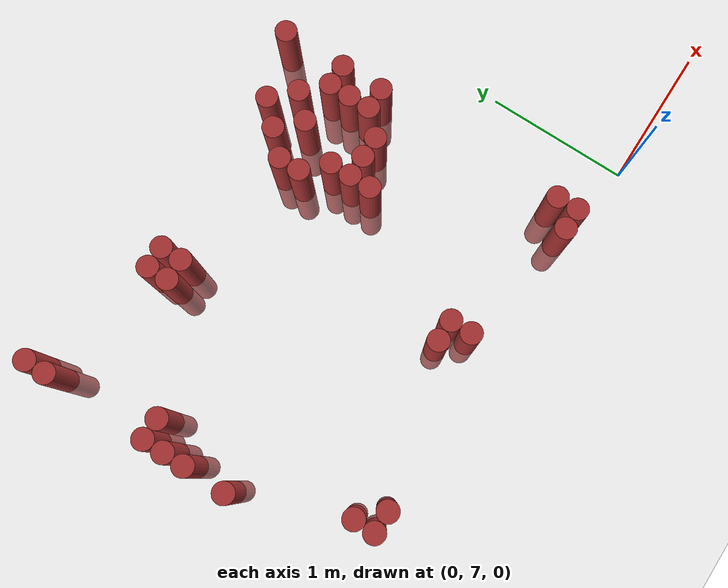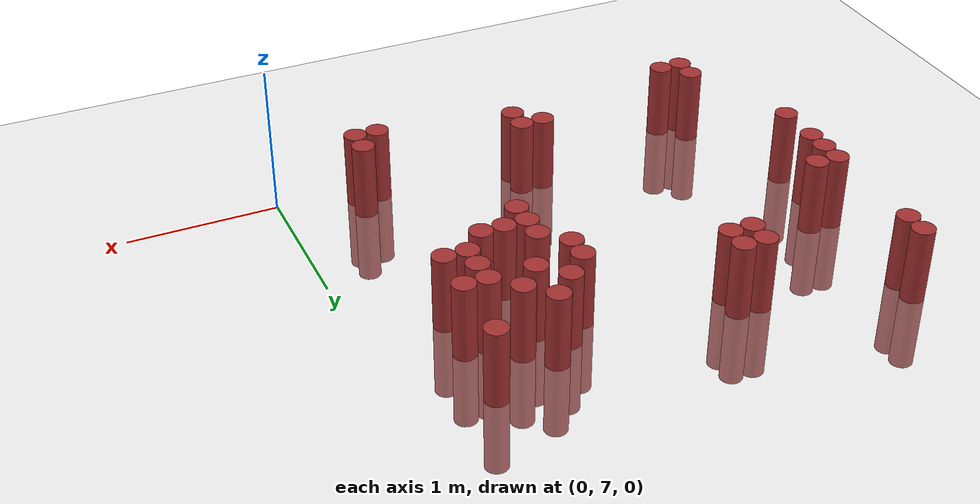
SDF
<sdf version="1.6">
 <world name="default">
  <model name="ground_plane">
   <static>1</static>
   <link name="link">
    <collision name="collision">
     <geometry><plane><normal>0 0 1</normal><size>100 100</size></plane></geometry>
     <surface><friction><ode><mu>100</mu><mu2>50</mu2></ode></friction></surface>
    </collision>
    <visual name="visual">
     <cast_shadows>0</cast_shadows>
     <geometry><plane><normal>0 0 1</normal><size>100 100</size></plane></geometry>
     <material>
      <script><uri>file://media/materials/scripts/gazebo.material</uri><name>Gazebo/Grey</name></script>
     </material>
    </visual>
   </link>
  </model>
  <model name="unit_cylinder_192">
   <static>1</static>
   <pose>-3.225000 8.025000 0.000000 0.000000 0.000000 0.000000</pose>
   <link name="link">
    <inertial>
     <mass>1</mass>
     <inertia><ixx>0.145833</ixx><ixy>0</ixy><ixz>0</ixz><iyy>0.145833</iyy><iyz>0</iyz><izz>0.125</izz></inertia>
    </inertial>
    <collision name="collision">
     <geometry><cylinder><radius>0.075000</radius><length>1</length></cylinder></geometry>
    </collision>
    <visual name="visual">
     <geometry><cylinder><radius>0.075000</radius><length>1</length></cylinder></geometry>
     <material>
      <ambient>0.648000 0.192000 0.192000 1</ambient>
      <diffuse>0.648000 0.192000 0.192000 1</diffuse>
     </material>
     <material>
      <script><name>Gazebo/Grey</name><uri>file://media/materials/scripts/gazebo.material</uri></script>
     </material>
    </visual>
    <sensor name="sensor_contact" type="contact"><contact><collision>collision</collision></contact></sensor>
   </link>
   <plugin filename="gz-sim-touchplugin-system" name="gz::sim::systems::TouchPlugin">
    <target>robot</target>
    <namespace>robot</namespace>
    <time>0.001</time>
    <enabled>true</enabled>
   </plugin>
  </model>
  <model name="unit_cylinder_193">
   <static>1</static>
   <pose>-3.225000 8.325000 0.000000 0.000000 0.000000 0.000000</pose>
   <link name="link">
    <inertial>
     <mass>1</mass>
     <inertia><ixx>0.145833</ixx><ixy>0</ixy><ixz>0</ixz><iyy>0.145833</iyy><iyz>0</iyz><izz>0.125</izz></inertia>
    </inertial>
    <collision name="collision">
     <geometry><cylinder><radius>0.075000</radius><length>1</length></cylinder></geometry>
    </collision>
    <visual name="visual">
     <geometry><cylinder><radius>0.075000</radius><length>1</length></cylinder></geometry>
     <material>
      <ambient>0.648000 0.192000 0.192000 1</ambient>
      <diffuse>0.648000 0.192000 0.192000 1</diffuse>
     </material>
     <material>
      <script><name>Gazebo/Grey</name><uri>file://media/materials/scripts/gazebo.material</uri></script>
     </material>
    </visual>
    <sensor name="sensor_contact" type="contact"><contact><collision>collision</collision></contact></sensor>
   </link>
   <plugin filename="gz-sim-touchplugin-system" name="gz::sim::systems::TouchPlugin">
    <target>robot</target>
    <namespace>robot</namespace>
    <time>0.001</time>
    <enabled>true</enabled>
   </plugin>
  </model>
  <model name="unit_cylinder_194">
   <static>1</static>
   <pose>-3.225000 8.475000 0.000000 0.000000 0.000000 0.000000</pose>
   <link name="link">
    <inertial>
     <mass>1</mass>
     <inertia><ixx>0.145833</ixx><ixy>0</ixy><ixz>0</ixz><iyy>0.145833</iyy><iyz>0</iyz><izz>0.125</izz></inertia>
    </inertial>
    <collision name="collision">
     <geometry><cylinder><radius>0.075000</radius><length>1</length></cylinder></geometry>
    </collision>
    <visual name="visual">
     <geometry><cylinder><radius>0.075000</radius><length>1</length></cylinder></geometry>
     <material>
      <ambient>0.648000 0.192000 0.192000 1</ambient>
      <diffuse>0.648000 0.192000 0.192000 1</diffuse>
     </material>
     <material>
      <script><name>Gazebo/Grey</name><uri>file://media/materials/scripts/gazebo.material</uri></script>
     </material>
    </visual>
    <sensor name="sensor_contact" type="contact"><contact><collision>collision</collision></contact></sensor>
   </link>
   <plugin filename="gz-sim-touchplugin-system" name="gz::sim::systems::TouchPlugin">
    <target>robot</target>
    <namespace>robot</namespace>
    <time>0.001</time>
    <enabled>true</enabled>
   </plugin>
  </model>
  <model name="unit_cylinder_195">
   <static>1</static>
   <pose>-3.225000 8.625000 0.000000 0.000000 0.000000 0.000000</pose>
   <link name="link">
    <inertial>
     <mass>1</mass>
     <inertia><ixx>0.145833</ixx><ixy>0</ixy><ixz>0</ixz><iyy>0.145833</iyy><iyz>0</iyz><izz>0.125</izz></inertia>
    </inertial>
    <collision name="collision">
     <geometry><cylinder><radius>0.075000</radius><length>1</length></cylinder></geometry>
    </collision>
    <visual name="visual">
     <geometry><cylinder><radius>0.075000</radius><length>1</length></cylinder></geometry>
     <material>
      <ambient>0.648000 0.192000 0.192000 1</ambient>
      <diffuse>0.648000 0.192000 0.192000 1</diffuse>
     </material>
     <material>
      <script><name>Gazebo/Grey</name><uri>file://media/materials/scripts/gazebo.material</uri></script>
     </material>
    </visual>
    <sensor name="sensor_contact" type="contact"><contact><collision>collision</collision></contact></sensor>
   </link>
   <plugin filename="gz-sim-touchplugin-system" name="gz::sim::systems::TouchPlugin">
    <target>robot</target>
    <namespace>robot</namespace>
    <time>0.001</time>
    <enabled>true</enabled>
   </plugin>
  </model>
  <model name="unit_cylinder_196">
   <static>1</static>
   <pose>-3.225000 9.375000 0.000000 0.000000 0.000000 0.000000</pose>
   <link name="link">
    <inertial>
     <mass>1</mass>
     <inertia><ixx>0.145833</ixx><ixy>0</ixy><ixz>0</ixz><iyy>0.145833</iyy><iyz>0</iyz><izz>0.125</izz></inertia>
    </inertial>
    <collision name="collision">
     <geometry><cylinder><radius>0.075000</radius><length>1</length></cylinder></geometry>
    </collision>
    <visual name="visual">
     <geometry><cylinder><radius>0.075000</radius><length>1</length></cylinder></geometry>
     <material>
      <ambient>0.648000 0.192000 0.192000 1</ambient>
      <diffuse>0.648000 0.192000 0.192000 1</diffuse>
     </material>
     <material>
      <script><name>Gazebo/Grey</name><uri>file://media/materials/scripts/gazebo.material</uri></script>
     </material>
    </visual>
    <sensor name="sensor_contact" type="contact"><contact><collision>collision</collision></contact></sensor>
   </link>
   <plugin filename="gz-sim-touchplugin-system" name="gz::sim::systems::TouchPlugin">
    <target>robot</target>
    <namespace>robot</namespace>
    <time>0.001</time>
    <enabled>true</enabled>
   </plugin>
  </model>
  <model name="unit_cylinder_197">
   <static>1</static>
   <pose>-3.225000 9.525000 0.000000 0.000000 0.000000 0.000000</pose>
   <link name="link">
    <inertial>
     <mass>1</mass>
     <inertia><ixx>0.145833</ixx><ixy>0</ixy><ixz>0</ixz><iyy>0.145833</iyy><iyz>0</iyz><izz>0.125</izz></inertia>
    </inertial>
    <collision name="collision">
     <geometry><cylinder><radius>0.075000</radius><length>1</length></cylinder></geometry>
    </collision>
    <visual name="visual">
     <geometry><cylinder><radius>0.075000</radius><length>1</length></cylinder></geometry>
     <material>
      <ambient>0.648000 0.192000 0.192000 1</ambient>
      <diffuse>0.648000 0.192000 0.192000 1</diffuse>
     </material>
     <material>
      <script><name>Gazebo/Grey</name><uri>file://media/materials/scripts/gazebo.material</uri></script>
     </material>
    </visual>
    <sensor name="sensor_contact" type="contact"><contact><collision>collision</collision></contact></sensor>
   </link>
   <plugin filename="gz-sim-touchplugin-system" name="gz::sim::systems::TouchPlugin">
    <target>robot</target>
    <namespace>robot</namespace>
    <time>0.001</time>
    <enabled>true</enabled>
   </plugin>
  </model>
  <model name="unit_cylinder_201">
   <static>1</static>
   <pose>-3.075000 8.625000 0.000000 0.000000 0.000000 0.000000</pose>
   <link name="link">
    <inertial>
     <mass>1</mass>
     <inertia><ixx>0.145833</ixx><ixy>0</ixy><ixz>0</ixz><iyy>0.145833</iyy><iyz>0</iyz><izz>0.125</izz></inertia>
    </inertial>
    <collision name="collision">
     <geometry><cylinder><radius>0.075000</radius><length>1</length></cylinder></geometry>
    </collision>
    <visual name="visual">
     <geometry><cylinder><radius>0.075000</radius><length>1</length></cylinder></geometry>
     <material>
      <ambient>0.648000 0.192000 0.192000 1</ambient>
      <diffuse>0.648000 0.192000 0.192000 1</diffuse>
     </material>
     <material>
      <script><name>Gazebo/Grey</name><uri>file://media/materials/scripts/gazebo.material</uri></script>
     </material>
    </visual>
    <sensor name="sensor_contact" type="contact"><contact><collision>collision</collision></contact></sensor>
   </link>
   <plugin filename="gz-sim-touchplugin-system" name="gz::sim::systems::TouchPlugin">
    <target>robot</target>
    <namespace>robot</namespace>
    <time>0.001</time>
    <enabled>true</enabled>
   </plugin>
  </model>
  <model name="unit_cylinder_205">
   <static>1</static>
   <pose>-2.925000 7.125000 0.000000 0.000000 0.000000 0.000000</pose>
   <link name="link">
    <inertial>
     <mass>1</mass>
     <inertia><ixx>0.145833</ixx><ixy>0</ixy><ixz>0</ixz><iyy>0.145833</iyy><iyz>0</iyz><izz>0.125</izz></inertia>
    </inertial>
    <collision name="collision">
     <geometry><cylinder><radius>0.075000</radius><length>1</length></cylinder></geometry>
    </collision>
    <visual name="visual">
     <geometry><cylinder><radius>0.075000</radius><length>1</length></cylinder></geometry>
     <material>
      <ambient>0.648000 0.192000 0.192000 1</ambient>
      <diffuse>0.648000 0.192000 0.192000 1</diffuse>
     </material>
     <material>
      <script><name>Gazebo/Grey</name><uri>file://media/materials/scripts/gazebo.material</uri></script>
     </material>
    </visual>
    <sensor name="sensor_contact" type="contact"><contact><collision>collision</collision></contact></sensor>
   </link>
   <plugin filename="gz-sim-touchplugin-system" name="gz::sim::systems::TouchPlugin">
    <target>robot</target>
    <namespace>robot</namespace>
    <time>0.001</time>
    <enabled>true</enabled>
   </plugin>
  </model>
  <model name="unit_cylinder_206">
   <static>1</static>
   <pose>-2.925000 7.275000 0.000000 0.000000 0.000000 0.000000</pose>
   <link name="link">
    <inertial>
     <mass>1</mass>
     <inertia><ixx>0.145833</ixx><ixy>0</ixy><ixz>0</ixz><iyy>0.145833</iyy><iyz>0</iyz><izz>0.125</izz></inertia>
    </inertial>
    <collision name="collision">
     <geometry><cylinder><radius>0.075000</radius><length>1</length></cylinder></geometry>
    </collision>
    <visual name="visual">
     <geometry><cylinder><radius>0.075000</radius><length>1</length></cylinder></geometry>
     <material>
      <ambient>0.648000 0.192000 0.192000 1</ambient>
      <diffuse>0.648000 0.192000 0.192000 1</diffuse>
     </material>
     <material>
      <script><name>Gazebo/Grey</name><uri>file://media/materials/scripts/gazebo.material</uri></script>
     </material>
    </visual>
    <sensor name="sensor_contact" type="contact"><contact><collision>collision</collision></contact></sensor>
   </link>
   <plugin filename="gz-sim-touchplugin-system" name="gz::sim::systems::TouchPlugin">
    <target>robot</target>
    <namespace>robot</namespace>
    <time>0.001</time>
    <enabled>true</enabled>
   </plugin>
  </model>
  <model name="unit_cylinder_208">
   <static>1</static>
   <pose>-2.775000 7.125000 0.000000 0.000000 0.000000 0.000000</pose>
   <link name="link">
    <inertial>
     <mass>1</mass>
     <inertia><ixx>0.145833</ixx><ixy>0</ixy><ixz>0</ixz><iyy>0.145833</iyy><iyz>0</iyz><izz>0.125</izz></inertia>
    </inertial>
    <collision name="collision">
     <geometry><cylinder><radius>0.075000</radius><length>1</length></cylinder></geometry>
    </collision>
    <visual name="visual">
     <geometry><cylinder><radius>0.075000</radius><length>1</length></cylinder></geometry>
     <material>
      <ambient>0.648000 0.192000 0.192000 1</ambient>
      <diffuse>0.648000 0.192000 0.192000 1</diffuse>
     </material>
     <material>
      <script><name>Gazebo/Grey</name><uri>file://media/materials/scripts/gazebo.material</uri></script>
     </material>
    </visual>
    <sensor name="sensor_contact" type="contact"><contact><collision>collision</collision></contact></sensor>
   </link>
   <plugin filename="gz-sim-touchplugin-system" name="gz::sim::systems::TouchPlugin">
    <target>robot</target>
    <namespace>robot</namespace>
    <time>0.001</time>
    <enabled>true</enabled>
   </plugin>
  </model>
  <model name="unit_cylinder_209">
   <static>1</static>
   <pose>-2.325000 9.075000 0.000000 0.000000 0.000000 0.000000</pose>
   <link name="link">
    <inertial>
     <mass>1</mass>
     <inertia><ixx>0.145833</ixx><ixy>0</ixy><ixz>0</ixz><iyy>0.145833</iyy><iyz>0</iyz><izz>0.125</izz></inertia>
    </inertial>
    <collision name="collision">
     <geometry><cylinder><radius>0.075000</radius><length>1</length></cylinder></geometry>
    </collision>
    <visual name="visual">
     <geometry><cylinder><radius>0.075000</radius><length>1</length></cylinder></geometry>
     <material>
      <ambient>0.648000 0.192000 0.192000 1</ambient>
      <diffuse>0.648000 0.192000 0.192000 1</diffuse>
     </material>
     <material>
      <script><name>Gazebo/Grey</name><uri>file://media/materials/scripts/gazebo.material</uri></script>
     </material>
    </visual>
    <sensor name="sensor_contact" type="contact"><contact><collision>collision</collision></contact></sensor>
   </link>
   <plugin filename="gz-sim-touchplugin-system" name="gz::sim::systems::TouchPlugin">
    <target>robot</target>
    <namespace>robot</namespace>
    <time>0.001</time>
    <enabled>true</enabled>
   </plugin>
  </model>
  <model name="unit_cylinder_210">
   <static>1</static>
   <pose>-2.325000 9.225000 0.000000 0.000000 0.000000 0.000000</pose>
   <link name="link">
    <inertial>
     <mass>1</mass>
     <inertia><ixx>0.145833</ixx><ixy>0</ixy><ixz>0</ixz><iyy>0.145833</iyy><iyz>0</iyz><izz>0.125</izz></inertia>
    </inertial>
    <collision name="collision">
     <geometry><cylinder><radius>0.075000</radius><length>1</length></cylinder></geometry>
    </collision>
    <visual name="visual">
     <geometry><cylinder><radius>0.075000</radius><length>1</length></cylinder></geometry>
     <material>
      <ambient>0.648000 0.192000 0.192000 1</ambient>
      <diffuse>0.648000 0.192000 0.192000 1</diffuse>
     </material>
     <material>
      <script><name>Gazebo/Grey</name><uri>file://media/materials/scripts/gazebo.material</uri></script>
     </material>
    </visual>
    <sensor name="sensor_contact" type="contact"><contact><collision>collision</collision></contact></sensor>
   </link>
   <plugin filename="gz-sim-touchplugin-system" name="gz::sim::systems::TouchPlugin">
    <target>robot</target>
    <namespace>robot</namespace>
    <time>0.001</time>
    <enabled>true</enabled>
   </plugin>
  </model>
  <model name="unit_cylinder_211">
   <static>1</static>
   <pose>-2.175000 9.075000 0.000000 0.000000 0.000000 0.000000</pose>
   <link name="link">
    <inertial>
     <mass>1</mass>
     <inertia><ixx>0.145833</ixx><ixy>0</ixy><ixz>0</ixz><iyy>0.145833</iyy><iyz>0</iyz><izz>0.125</izz></inertia>
    </inertial>
    <collision name="collision">
     <geometry><cylinder><radius>0.075000</radius><length>1</length></cylinder></geometry>
    </collision>
    <visual name="visual">
     <geometry><cylinder><radius>0.075000</radius><length>1</length></cylinder></geometry>
     <material>
      <ambient>0.648000 0.192000 0.192000 1</ambient>
      <diffuse>0.648000 0.192000 0.192000 1</diffuse>
     </material>
     <material>
      <script><name>Gazebo/Grey</name><uri>file://media/materials/scripts/gazebo.material</uri></script>
     </material>
    </visual>
    <sensor name="sensor_contact" type="contact"><contact><collision>collision</collision></contact></sensor>
   </link>
   <plugin filename="gz-sim-touchplugin-system" name="gz::sim::systems::TouchPlugin">
    <target>robot</target>
    <namespace>robot</namespace>
    <time>0.001</time>
    <enabled>true</enabled>
   </plugin>
  </model>
  <model name="unit_cylinder_212">
   <static>1</static>
   <pose>-2.175000 9.225000 0.000000 0.000000 0.000000 0.000000</pose>
   <link name="link">
    <inertial>
     <mass>1</mass>
     <inertia><ixx>0.145833</ixx><ixy>0</ixy><ixz>0</ixz><iyy>0.145833</iyy><iyz>0</iyz><izz>0.125</izz></inertia>
    </inertial>
    <collision name="collision">
     <geometry><cylinder><radius>0.075000</radius><length>1</length></cylinder></geometry>
    </collision>
    <visual name="visual">
     <geometry><cylinder><radius>0.075000</radius><length>1</length></cylinder></geometry>
     <material>
      <ambient>0.648000 0.192000 0.192000 1</ambient>
      <diffuse>0.648000 0.192000 0.192000 1</diffuse>
     </material>
     <material>
      <script><name>Gazebo/Grey</name><uri>file://media/materials/scripts/gazebo.material</uri></script>
     </material>
    </visual>
    <sensor name="sensor_contact" type="contact"><contact><collision>collision</collision></contact></sensor>
   </link>
   <plugin filename="gz-sim-touchplugin-system" name="gz::sim::systems::TouchPlugin">
    <target>robot</target>
    <namespace>robot</namespace>
    <time>0.001</time>
    <enabled>true</enabled>
   </plugin>
  </model>
  <model name="unit_cylinder_220">
   <static>1</static>
   <pose>-1.725000 7.425000 0.000000 0.000000 0.000000 0.000000</pose>
   <link name="link">
    <inertial>
     <mass>1</mass>
     <inertia><ixx>0.145833</ixx><ixy>0</ixy><ixz>0</ixz><iyy>0.145833</iyy><iyz>0</iyz><izz>0.125</izz></inertia>
    </inertial>
    <collision name="collision">
     <geometry><cylinder><radius>0.075000</radius><length>1</length></cylinder></geometry>
    </collision>
    <visual name="visual">
     <geometry><cylinder><radius>0.075000</radius><length>1</length></cylinder></geometry>
     <material>
      <ambient>0.648000 0.192000 0.192000 1</ambient>
      <diffuse>0.648000 0.192000 0.192000 1</diffuse>
     </material>
     <material>
      <script><name>Gazebo/Grey</name><uri>file://media/materials/scripts/gazebo.material</uri></script>
     </material>
    </visual>
    <sensor name="sensor_contact" type="contact"><contact><collision>collision</collision></contact></sensor>
   </link>
   <plugin filename="gz-sim-touchplugin-system" name="gz::sim::systems::TouchPlugin">
    <target>robot</target>
    <namespace>robot</namespace>
    <time>0.001</time>
    <enabled>true</enabled>
   </plugin>
  </model>
  <model name="unit_cylinder_224">
   <static>1</static>
   <pose>-1.575000 7.275000 0.000000 0.000000 0.000000 0.000000</pose>
   <link name="link">
    <inertial>
     <mass>1</mass>
     <inertia><ixx>0.145833</ixx><ixy>0</ixy><ixz>0</ixz><iyy>0.145833</iyy><iyz>0</iyz><izz>0.125</izz></inertia>
    </inertial>
    <collision name="collision">
     <geometry><cylinder><radius>0.075000</radius><length>1</length></cylinder></geometry>
    </collision>
    <visual name="visual">
     <geometry><cylinder><radius>0.075000</radius><length>1</length></cylinder></geometry>
     <material>
      <ambient>0.648000 0.192000 0.192000 1</ambient>
      <diffuse>0.648000 0.192000 0.192000 1</diffuse>
     </material>
     <material>
      <script><name>Gazebo/Grey</name><uri>file://media/materials/scripts/gazebo.material</uri></script>
     </material>
    </visual>
    <sensor name="sensor_contact" type="contact"><contact><collision>collision</collision></contact></sensor>
   </link>
   <plugin filename="gz-sim-touchplugin-system" name="gz::sim::systems::TouchPlugin">
    <target>robot</target>
    <namespace>robot</namespace>
    <time>0.001</time>
    <enabled>true</enabled>
   </plugin>
  </model>
  <model name="unit_cylinder_225">
   <static>1</static>
   <pose>-1.575000 7.425000 0.000000 0.000000 0.000000 0.000000</pose>
   <link name="link">
    <inertial>
     <mass>1</mass>
     <inertia><ixx>0.145833</ixx><ixy>0</ixy><ixz>0</ixz><iyy>0.145833</iyy><iyz>0</iyz><izz>0.125</izz></inertia>
    </inertial>
    <collision name="collision">
     <geometry><cylinder><radius>0.075000</radius><length>1</length></cylinder></geometry>
    </collision>
    <visual name="visual">
     <geometry><cylinder><radius>0.075000</radius><length>1</length></cylinder></geometry>
     <material>
      <ambient>0.648000 0.192000 0.192000 1</ambient>
      <diffuse>0.648000 0.192000 0.192000 1</diffuse>
     </material>
     <material>
      <script><name>Gazebo/Grey</name><uri>file://media/materials/scripts/gazebo.material</uri></script>
     </material>
    </visual>
    <sensor name="sensor_contact" type="contact"><contact><collision>collision</collision></contact></sensor>
   </link>
   <plugin filename="gz-sim-touchplugin-system" name="gz::sim::systems::TouchPlugin">
    <target>robot</target>
    <namespace>robot</namespace>
    <time>0.001</time>
    <enabled>true</enabled>
   </plugin>
  </model>
  <model name="unit_cylinder_235">
   <static>1</static>
   <pose>-1.275000 8.775000 0.000000 0.000000 0.000000 0.000000</pose>
   <link name="link">
    <inertial>
     <mass>1</mass>
     <inertia><ixx>0.145833</ixx><ixy>0</ixy><ixz>0</ixz><iyy>0.145833</iyy><iyz>0</iyz><izz>0.125</izz></inertia>
    </inertial>
    <collision name="collision">
     <geometry><cylinder><radius>0.075000</radius><length>1</length></cylinder></geometry>
    </collision>
    <visual name="visual">
     <geometry><cylinder><radius>0.075000</radius><length>1</length></cylinder></geometry>
     <material>
      <ambient>0.648000 0.192000 0.192000 1</ambient>
      <diffuse>0.648000 0.192000 0.192000 1</diffuse>
     </material>
     <material>
      <script><name>Gazebo/Grey</name><uri>file://media/materials/scripts/gazebo.material</uri></script>
     </material>
    </visual>
    <sensor name="sensor_contact" type="contact"><contact><collision>collision</collision></contact></sensor>
   </link>
   <plugin filename="gz-sim-touchplugin-system" name="gz::sim::systems::TouchPlugin">
    <target>robot</target>
    <namespace>robot</namespace>
    <time>0.001</time>
    <enabled>true</enabled>
   </plugin>
  </model>
  <model name="unit_cylinder_236">
   <static>1</static>
   <pose>-1.275000 8.925000 0.000000 0.000000 0.000000 0.000000</pose>
   <link name="link">
    <inertial>
     <mass>1</mass>
     <inertia><ixx>0.145833</ixx><ixy>0</ixy><ixz>0</ixz><iyy>0.145833</iyy><iyz>0</iyz><izz>0.125</izz></inertia>
    </inertial>
    <collision name="collision">
     <geometry><cylinder><radius>0.075000</radius><length>1</length></cylinder></geometry>
    </collision>
    <visual name="visual">
     <geometry><cylinder><radius>0.075000</radius><length>1</length></cylinder></geometry>
     <material>
      <ambient>0.648000 0.192000 0.192000 1</ambient>
      <diffuse>0.648000 0.192000 0.192000 1</diffuse>
     </material>
     <material>
      <script><name>Gazebo/Grey</name><uri>file://media/materials/scripts/gazebo.material</uri></script>
     </material>
    </visual>
    <sensor name="sensor_contact" type="contact"><contact><collision>collision</collision></contact></sensor>
   </link>
   <plugin filename="gz-sim-touchplugin-system" name="gz::sim::systems::TouchPlugin">
    <target>robot</target>
    <namespace>robot</namespace>
    <time>0.001</time>
    <enabled>true</enabled>
   </plugin>
  </model>
  <model name="unit_cylinder_241">
   <static>1</static>
   <pose>-1.125000 8.325000 0.000000 0.000000 0.000000 0.000000</pose>
   <link name="link">
    <inertial>
     <mass>1</mass>
     <inertia><ixx>0.145833</ixx><ixy>0</ixy><ixz>0</ixz><iyy>0.145833</iyy><iyz>0</iyz><izz>0.125</izz></inertia>
    </inertial>
    <collision name="collision">
     <geometry><cylinder><radius>0.075000</radius><length>1</length></cylinder></geometry>
    </collision>
    <visual name="visual">
     <geometry><cylinder><radius>0.075000</radius><length>1</length></cylinder></geometry>
     <material>
      <ambient>0.648000 0.192000 0.192000 1</ambient>
      <diffuse>0.648000 0.192000 0.192000 1</diffuse>
     </material>
     <material>
      <script><name>Gazebo/Grey</name><uri>file://media/materials/scripts/gazebo.material</uri></script>
     </material>
    </visual>
    <sensor name="sensor_contact" type="contact"><contact><collision>collision</collision></contact></sensor>
   </link>
   <plugin filename="gz-sim-touchplugin-system" name="gz::sim::systems::TouchPlugin">
    <target>robot</target>
    <namespace>robot</namespace>
    <time>0.001</time>
    <enabled>true</enabled>
   </plugin>
  </model>
  <model name="unit_cylinder_242">
   <static>1</static>
   <pose>-1.125000 8.475000 0.000000 0.000000 0.000000 0.000000</pose>
   <link name="link">
    <inertial>
     <mass>1</mass>
     <inertia><ixx>0.145833</ixx><ixy>0</ixy><ixz>0</ixz><iyy>0.145833</iyy><iyz>0</iyz><izz>0.125</izz></inertia>
    </inertial>
    <collision name="collision">
     <geometry><cylinder><radius>0.075000</radius><length>1</length></cylinder></geometry>
    </collision>
    <visual name="visual">
     <geometry><cylinder><radius>0.075000</radius><length>1</length></cylinder></geometry>
     <material>
      <ambient>0.648000 0.192000 0.192000 1</ambient>
      <diffuse>0.648000 0.192000 0.192000 1</diffuse>
     </material>
     <material>
      <script><name>Gazebo/Grey</name><uri>file://media/materials/scripts/gazebo.material</uri></script>
     </material>
    </visual>
    <sensor name="sensor_contact" type="contact"><contact><collision>collision</collision></contact></sensor>
   </link>
   <plugin filename="gz-sim-touchplugin-system" name="gz::sim::systems::TouchPlugin">
    <target>robot</target>
    <namespace>robot</namespace>
    <time>0.001</time>
    <enabled>true</enabled>
   </plugin>
  </model>
  <model name="unit_cylinder_243">
   <static>1</static>
   <pose>-1.125000 8.625000 0.000000 0.000000 0.000000 0.000000</pose>
   <link name="link">
    <inertial>
     <mass>1</mass>
     <inertia><ixx>0.145833</ixx><ixy>0</ixy><ixz>0</ixz><iyy>0.145833</iyy><iyz>0</iyz><izz>0.125</izz></inertia>
    </inertial>
    <collision name="collision">
     <geometry><cylinder><radius>0.075000</radius><length>1</length></cylinder></geometry>
    </collision>
    <visual name="visual">
     <geometry><cylinder><radius>0.075000</radius><length>1</length></cylinder></geometry>
     <material>
      <ambient>0.648000 0.192000 0.192000 1</ambient>
      <diffuse>0.648000 0.192000 0.192000 1</diffuse>
     </material>
     <material>
      <script><name>Gazebo/Grey</name><uri>file://media/materials/scripts/gazebo.material</uri></script>
     </material>
    </visual>
    <sensor name="sensor_contact" type="contact"><contact><collision>collision</collision></contact></sensor>
   </link>
   <plugin filename="gz-sim-touchplugin-system" name="gz::sim::systems::TouchPlugin">
    <target>robot</target>
    <namespace>robot</namespace>
    <time>0.001</time>
    <enabled>true</enabled>
   </plugin>
  </model>
  <model name="unit_cylinder_244">
   <static>1</static>
   <pose>-1.125000 9.075000 0.000000 0.000000 0.000000 0.000000</pose>
   <link name="link">
    <inertial>
     <mass>1</mass>
     <inertia><ixx>0.145833</ixx><ixy>0</ixy><ixz>0</ixz><iyy>0.145833</iyy><iyz>0</iyz><izz>0.125</izz></inertia>
    </inertial>
    <collision name="collision">
     <geometry><cylinder><radius>0.075000</radius><length>1</length></cylinder></geometry>
    </collision>
    <visual name="visual">
     <geometry><cylinder><radius>0.075000</radius><length>1</length></cylinder></geometry>
     <material>
      <ambient>0.648000 0.192000 0.192000 1</ambient>
      <diffuse>0.648000 0.192000 0.192000 1</diffuse>
     </material>
     <material>
      <script><name>Gazebo/Grey</name><uri>file://media/materials/scripts/gazebo.material</uri></script>
     </material>
    </visual>
    <sensor name="sensor_contact" type="contact"><contact><collision>collision</collision></contact></sensor>
   </link>
   <plugin filename="gz-sim-touchplugin-system" name="gz::sim::systems::TouchPlugin">
    <target>robot</target>
    <namespace>robot</namespace>
    <time>0.001</time>
    <enabled>true</enabled>
   </plugin>
  </model>
  <model name="unit_cylinder_248">
   <static>1</static>
   <pose>-0.975000 8.475000 0.000000 0.000000 0.000000 0.000000</pose>
   <link name="link">
    <inertial>
     <mass>1</mass>
     <inertia><ixx>0.145833</ixx><ixy>0</ixy><ixz>0</ixz><iyy>0.145833</iyy><iyz>0</iyz><izz>0.125</izz></inertia>
    </inertial>
    <collision name="collision">
     <geometry><cylinder><radius>0.075000</radius><length>1</length></cylinder></geometry>
    </collision>
    <visual name="visual">
     <geometry><cylinder><radius>0.075000</radius><length>1</length></cylinder></geometry>
     <material>
      <ambient>0.648000 0.192000 0.192000 1</ambient>
      <diffuse>0.648000 0.192000 0.192000 1</diffuse>
     </material>
     <material>
      <script><name>Gazebo/Grey</name><uri>file://media/materials/scripts/gazebo.material</uri></script>
     </material>
    </visual>
    <sensor name="sensor_contact" type="contact"><contact><collision>collision</collision></contact></sensor>
   </link>
   <plugin filename="gz-sim-touchplugin-system" name="gz::sim::systems::TouchPlugin">
    <target>robot</target>
    <namespace>robot</namespace>
    <time>0.001</time>
    <enabled>true</enabled>
   </plugin>
  </model>
  <model name="unit_cylinder_249">
   <static>1</static>
   <pose>-0.975000 8.925000 0.000000 0.000000 0.000000 0.000000</pose>
   <link name="link">
    <inertial>
     <mass>1</mass>
     <inertia><ixx>0.145833</ixx><ixy>0</ixy><ixz>0</ixz><iyy>0.145833</iyy><iyz>0</iyz><izz>0.125</izz></inertia>
    </inertial>
    <collision name="collision">
     <geometry><cylinder><radius>0.075000</radius><length>1</length></cylinder></geometry>
    </collision>
    <visual name="visual">
     <geometry><cylinder><radius>0.075000</radius><length>1</length></cylinder></geometry>
     <material>
      <ambient>0.648000 0.192000 0.192000 1</ambient>
      <diffuse>0.648000 0.192000 0.192000 1</diffuse>
     </material>
     <material>
      <script><name>Gazebo/Grey</name><uri>file://media/materials/scripts/gazebo.material</uri></script>
     </material>
    </visual>
    <sensor name="sensor_contact" type="contact"><contact><collision>collision</collision></contact></sensor>
   </link>
   <plugin filename="gz-sim-touchplugin-system" name="gz::sim::systems::TouchPlugin">
    <target>robot</target>
    <namespace>robot</namespace>
    <time>0.001</time>
    <enabled>true</enabled>
   </plugin>
  </model>
  <model name="unit_cylinder_250">
   <static>1</static>
   <pose>-0.975000 9.225000 0.000000 0.000000 0.000000 0.000000</pose>
   <link name="link">
    <inertial>
     <mass>1</mass>
     <inertia><ixx>0.145833</ixx><ixy>0</ixy><ixz>0</ixz><iyy>0.145833</iyy><iyz>0</iyz><izz>0.125</izz></inertia>
    </inertial>
    <collision name="collision">
     <geometry><cylinder><radius>0.075000</radius><length>1</length></cylinder></geometry>
    </collision>
    <visual name="visual">
     <geometry><cylinder><radius>0.075000</radius><length>1</length></cylinder></geometry>
     <material>
      <ambient>0.648000 0.192000 0.192000 1</ambient>
      <diffuse>0.648000 0.192000 0.192000 1</diffuse>
     </material>
     <material>
      <script><name>Gazebo/Grey</name><uri>file://media/materials/scripts/gazebo.material</uri></script>
     </material>
    </visual>
    <sensor name="sensor_contact" type="contact"><contact><collision>collision</collision></contact></sensor>
   </link>
   <plugin filename="gz-sim-touchplugin-system" name="gz::sim::systems::TouchPlugin">
    <target>robot</target>
    <namespace>robot</namespace>
    <time>0.001</time>
    <enabled>true</enabled>
   </plugin>
  </model>
  <model name="unit_cylinder_253">
   <static>1</static>
   <pose>-0.825000 8.475000 0.000000 0.000000 0.000000 0.000000</pose>
   <link name="link">
    <inertial>
     <mass>1</mass>
     <inertia><ixx>0.145833</ixx><ixy>0</ixy><ixz>0</ixz><iyy>0.145833</iyy><iyz>0</iyz><izz>0.125</izz></inertia>
    </inertial>
    <collision name="collision">
     <geometry><cylinder><radius>0.075000</radius><length>1</length></cylinder></geometry>
    </collision>
    <visual name="visual">
     <geometry><cylinder><radius>0.075000</radius><length>1</length></cylinder></geometry>
     <material>
      <ambient>0.648000 0.192000 0.192000 1</ambient>
      <diffuse>0.648000 0.192000 0.192000 1</diffuse>
     </material>
     <material>
      <script><name>Gazebo/Grey</name><uri>file://media/materials/scripts/gazebo.material</uri></script>
     </material>
    </visual>
    <sensor name="sensor_contact" type="contact"><contact><collision>collision</collision></contact></sensor>
   </link>
   <plugin filename="gz-sim-touchplugin-system" name="gz::sim::systems::TouchPlugin">
    <target>robot</target>
    <namespace>robot</namespace>
    <time>0.001</time>
    <enabled>true</enabled>
   </plugin>
  </model>
  <model name="unit_cylinder_254">
   <static>1</static>
   <pose>-0.825000 9.075000 0.000000 0.000000 0.000000 0.000000</pose>
   <link name="link">
    <inertial>
     <mass>1</mass>
     <inertia><ixx>0.145833</ixx><ixy>0</ixy><ixz>0</ixz><iyy>0.145833</iyy><iyz>0</iyz><izz>0.125</izz></inertia>
    </inertial>
    <collision name="collision">
     <geometry><cylinder><radius>0.075000</radius><length>1</length></cylinder></geometry>
    </collision>
    <visual name="visual">
     <geometry><cylinder><radius>0.075000</radius><length>1</length></cylinder></geometry>
     <material>
      <ambient>0.648000 0.192000 0.192000 1</ambient>
      <diffuse>0.648000 0.192000 0.192000 1</diffuse>
     </material>
     <material>
      <script><name>Gazebo/Grey</name><uri>file://media/materials/scripts/gazebo.material</uri></script>
     </material>
    </visual>
    <sensor name="sensor_contact" type="contact"><contact><collision>collision</collision></contact></sensor>
   </link>
   <plugin filename="gz-sim-touchplugin-system" name="gz::sim::systems::TouchPlugin">
    <target>robot</target>
    <namespace>robot</namespace>
    <time>0.001</time>
    <enabled>true</enabled>
   </plugin>
  </model>
  <model name="unit_cylinder_258">
   <static>1</static>
   <pose>-0.675000 7.125000 0.000000 0.000000 0.000000 0.000000</pose>
   <link name="link">
    <inertial>
     <mass>1</mass>
     <inertia><ixx>0.145833</ixx><ixy>0</ixy><ixz>0</ixz><iyy>0.145833</iyy><iyz>0</iyz><izz>0.125</izz></inertia>
    </inertial>
    <collision name="collision">
     <geometry><cylinder><radius>0.075000</radius><length>1</length></cylinder></geometry>
    </collision>
    <visual name="visual">
     <geometry><cylinder><radius>0.075000</radius><length>1</length></cylinder></geometry>
     <material>
      <ambient>0.648000 0.192000 0.192000 1</ambient>
      <diffuse>0.648000 0.192000 0.192000 1</diffuse>
     </material>
     <material>
      <script><name>Gazebo/Grey</name><uri>file://media/materials/scripts/gazebo.material</uri></script>
     </material>
    </visual>
    <sensor name="sensor_contact" type="contact"><contact><collision>collision</collision></contact></sensor>
   </link>
   <plugin filename="gz-sim-touchplugin-system" name="gz::sim::systems::TouchPlugin">
    <target>robot</target>
    <namespace>robot</namespace>
    <time>0.001</time>
    <enabled>true</enabled>
   </plugin>
  </model>
  <model name="unit_cylinder_259">
   <static>1</static>
   <pose>-0.675000 8.625000 0.000000 0.000000 0.000000 0.000000</pose>
   <link name="link">
    <inertial>
     <mass>1</mass>
     <inertia><ixx>0.145833</ixx><ixy>0</ixy><ixz>0</ixz><iyy>0.145833</iyy><iyz>0</iyz><izz>0.125</izz></inertia>
    </inertial>
    <collision name="collision">
     <geometry><cylinder><radius>0.075000</radius><length>1</length></cylinder></geometry>
    </collision>
    <visual name="visual">
     <geometry><cylinder><radius>0.075000</radius><length>1</length></cylinder></geometry>
     <material>
      <ambient>0.648000 0.192000 0.192000 1</ambient>
      <diffuse>0.648000 0.192000 0.192000 1</diffuse>
     </material>
     <material>
      <script><name>Gazebo/Grey</name><uri>file://media/materials/scripts/gazebo.material</uri></script>
     </material>
    </visual>
    <sensor name="sensor_contact" type="contact"><contact><collision>collision</collision></contact></sensor>
   </link>
   <plugin filename="gz-sim-touchplugin-system" name="gz::sim::systems::TouchPlugin">
    <target>robot</target>
    <namespace>robot</namespace>
    <time>0.001</time>
    <enabled>true</enabled>
   </plugin>
  </model>
  <model name="unit_cylinder_260">
   <static>1</static>
   <pose>-0.675000 8.775000 0.000000 0.000000 0.000000 0.000000</pose>
   <link name="link">
    <inertial>
     <mass>1</mass>
     <inertia><ixx>0.145833</ixx><ixy>0</ixy><ixz>0</ixz><iyy>0.145833</iyy><iyz>0</iyz><izz>0.125</izz></inertia>
    </inertial>
    <collision name="collision">
     <geometry><cylinder><radius>0.075000</radius><length>1</length></cylinder></geometry>
    </collision>
    <visual name="visual">
     <geometry><cylinder><radius>0.075000</radius><length>1</length></cylinder></geometry>
     <material>
      <ambient>0.648000 0.192000 0.192000 1</ambient>
      <diffuse>0.648000 0.192000 0.192000 1</diffuse>
     </material>
     <material>
      <script><name>Gazebo/Grey</name><uri>file://media/materials/scripts/gazebo.material</uri></script>
     </material>
    </visual>
    <sensor name="sensor_contact" type="contact"><contact><collision>collision</collision></contact></sensor>
   </link>
   <plugin filename="gz-sim-touchplugin-system" name="gz::sim::systems::TouchPlugin">
    <target>robot</target>
    <namespace>robot</namespace>
    <time>0.001</time>
    <enabled>true</enabled>
   </plugin>
  </model>
  <model name="unit_cylinder_261">
   <static>1</static>
   <pose>-0.675000 8.925000 0.000000 0.000000 0.000000 0.000000</pose>
   <link name="link">
    <inertial>
     <mass>1</mass>
     <inertia><ixx>0.145833</ixx><ixy>0</ixy><ixz>0</ixz><iyy>0.145833</iyy><iyz>0</iyz><izz>0.125</izz></inertia>
    </inertial>
    <collision name="collision">
     <geometry><cylinder><radius>0.075000</radius><length>1</length></cylinder></geometry>
    </collision>
    <visual name="visual">
     <geometry><cylinder><radius>0.075000</radius><length>1</length></cylinder></geometry>
     <material>
      <ambient>0.648000 0.192000 0.192000 1</ambient>
      <diffuse>0.648000 0.192000 0.192000 1</diffuse>
     </material>
     <material>
      <script><name>Gazebo/Grey</name><uri>file://media/materials/scripts/gazebo.material</uri></script>
     </material>
    </visual>
    <sensor name="sensor_contact" type="contact"><contact><collision>collision</collision></contact></sensor>
   </link>
   <plugin filename="gz-sim-touchplugin-system" name="gz::sim::systems::TouchPlugin">
    <target>robot</target>
    <namespace>robot</namespace>
    <time>0.001</time>
    <enabled>true</enabled>
   </plugin>
  </model>
  <model name="unit_cylinder_267">
   <static>1</static>
   <pose>-0.525000 7.125000 0.000000 0.000000 0.000000 0.000000</pose>
   <link name="link">
    <inertial>
     <mass>1</mass>
     <inertia><ixx>0.145833</ixx><ixy>0</ixy><ixz>0</ixz><iyy>0.145833</iyy><iyz>0</iyz><izz>0.125</izz></inertia>
    </inertial>
    <collision name="collision">
     <geometry><cylinder><radius>0.075000</radius><length>1</length></cylinder></geometry>
    </collision>
    <visual name="visual">
     <geometry><cylinder><radius>0.075000</radius><length>1</length></cylinder></geometry>
     <material>
      <ambient>0.648000 0.192000 0.192000 1</ambient>
      <diffuse>0.648000 0.192000 0.192000 1</diffuse>
     </material>
     <material>
      <script><name>Gazebo/Grey</name><uri>file://media/materials/scripts/gazebo.material</uri></script>
     </material>
    </visual>
    <sensor name="sensor_contact" type="contact"><contact><collision>collision</collision></contact></sensor>
   </link>
   <plugin filename="gz-sim-touchplugin-system" name="gz::sim::systems::TouchPlugin">
    <target>robot</target>
    <namespace>robot</namespace>
    <time>0.001</time>
    <enabled>true</enabled>
   </plugin>
  </model>
  <model name="unit_cylinder_268">
   <static>1</static>
   <pose>-0.525000 7.275000 0.000000 0.000000 0.000000 0.000000</pose>
   <link name="link">
    <inertial>
     <mass>1</mass>
     <inertia><ixx>0.145833</ixx><ixy>0</ixy><ixz>0</ixz><iyy>0.145833</iyy><iyz>0</iyz><izz>0.125</izz></inertia>
    </inertial>
    <collision name="collision">
     <geometry><cylinder><radius>0.075000</radius><length>1</length></cylinder></geometry>
    </collision>
    <visual name="visual">
     <geometry><cylinder><radius>0.075000</radius><length>1</length></cylinder></geometry>
     <material>
      <ambient>0.648000 0.192000 0.192000 1</ambient>
      <diffuse>0.648000 0.192000 0.192000 1</diffuse>
     </material>
     <material>
      <script><name>Gazebo/Grey</name><uri>file://media/materials/scripts/gazebo.material</uri></script>
     </material>
    </visual>
    <sensor name="sensor_contact" type="contact"><contact><collision>collision</collision></contact></sensor>
   </link>
   <plugin filename="gz-sim-touchplugin-system" name="gz::sim::systems::TouchPlugin">
    <target>robot</target>
    <namespace>robot</namespace>
    <time>0.001</time>
    <enabled>true</enabled>
   </plugin>
  </model>
  <model name="unit_cylinder_269">
   <static>1</static>
   <pose>-0.525000 8.625000 0.000000 0.000000 0.000000 0.000000</pose>
   <link name="link">
    <inertial>
     <mass>1</mass>
     <inertia><ixx>0.145833</ixx><ixy>0</ixy><ixz>0</ixz><iyy>0.145833</iyy><iyz>0</iyz><izz>0.125</izz></inertia>
    </inertial>
    <collision name="collision">
     <geometry><cylinder><radius>0.075000</radius><length>1</length></cylinder></geometry>
    </collision>
    <visual name="visual">
     <geometry><cylinder><radius>0.075000</radius><length>1</length></cylinder></geometry>
     <material>
      <ambient>0.648000 0.192000 0.192000 1</ambient>
      <diffuse>0.648000 0.192000 0.192000 1</diffuse>
     </material>
     <material>
      <script><name>Gazebo/Grey</name><uri>file://media/materials/scripts/gazebo.material</uri></script>
     </material>
    </visual>
    <sensor name="sensor_contact" type="contact"><contact><collision>collision</collision></contact></sensor>
   </link>
   <plugin filename="gz-sim-touchplugin-system" name="gz::sim::systems::TouchPlugin">
    <target>robot</target>
    <namespace>robot</namespace>
    <time>0.001</time>
    <enabled>true</enabled>
   </plugin>
  </model>
  <model name="unit_cylinder_270">
   <static>1</static>
   <pose>-0.525000 8.925000 0.000000 0.000000 0.000000 0.000000</pose>
   <link name="link">
    <inertial>
     <mass>1</mass>
     <inertia><ixx>0.145833</ixx><ixy>0</ixy><ixz>0</ixz><iyy>0.145833</iyy><iyz>0</iyz><izz>0.125</izz></inertia>
    </inertial>
    <collision name="collision">
     <geometry><cylinder><radius>0.075000</radius><length>1</length></cylinder></geometry>
    </collision>
    <visual name="visual">
     <geometry><cylinder><radius>0.075000</radius><length>1</length></cylinder></geometry>
     <material>
      <ambient>0.648000 0.192000 0.192000 1</ambient>
      <diffuse>0.648000 0.192000 0.192000 1</diffuse>
     </material>
     <material>
      <script><name>Gazebo/Grey</name><uri>file://media/materials/scripts/gazebo.material</uri></script>
     </material>
    </visual>
    <sensor name="sensor_contact" type="contact"><contact><collision>collision</collision></contact></sensor>
   </link>
   <plugin filename="gz-sim-touchplugin-system" name="gz::sim::systems::TouchPlugin">
    <target>robot</target>
    <namespace>robot</namespace>
    <time>0.001</time>
    <enabled>true</enabled>
   </plugin>
  </model>
  <model name="unit_cylinder_271">
   <static>1</static>
   <pose>-0.525000 9.375000 0.000000 0.000000 0.000000 0.000000</pose>
   <link name="link">
    <inertial>
     <mass>1</mass>
     <inertia><ixx>0.145833</ixx><ixy>0</ixy><ixz>0</ixz><iyy>0.145833</iyy><iyz>0</iyz><izz>0.125</izz></inertia>
    </inertial>
    <collision name="collision">
     <geometry><cylinder><radius>0.075000</radius><length>1</length></cylinder></geometry>
    </collision>
    <visual name="visual">
     <geometry><cylinder><radius>0.075000</radius><length>1</length></cylinder></geometry>
     <material>
      <ambient>0.648000 0.192000 0.192000 1</ambient>
      <diffuse>0.648000 0.192000 0.192000 1</diffuse>
     </material>
     <material>
      <script><name>Gazebo/Grey</name><uri>file://media/materials/scripts/gazebo.material</uri></script>
     </material>
    </visual>
    <sensor name="sensor_contact" type="contact"><contact><collision>collision</collision></contact></sensor>
   </link>
   <plugin filename="gz-sim-touchplugin-system" name="gz::sim::systems::TouchPlugin">
    <target>robot</target>
    <namespace>robot</namespace>
    <time>0.001</time>
    <enabled>true</enabled>
   </plugin>
  </model>
 </world>
</sdf>
